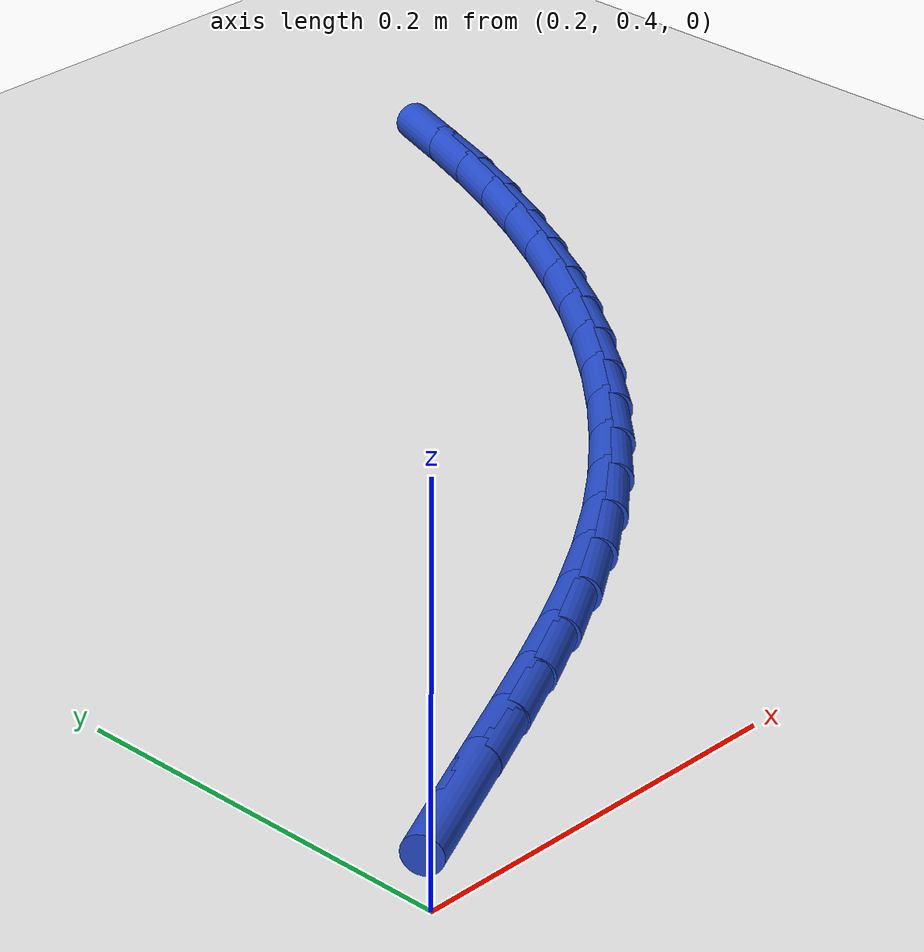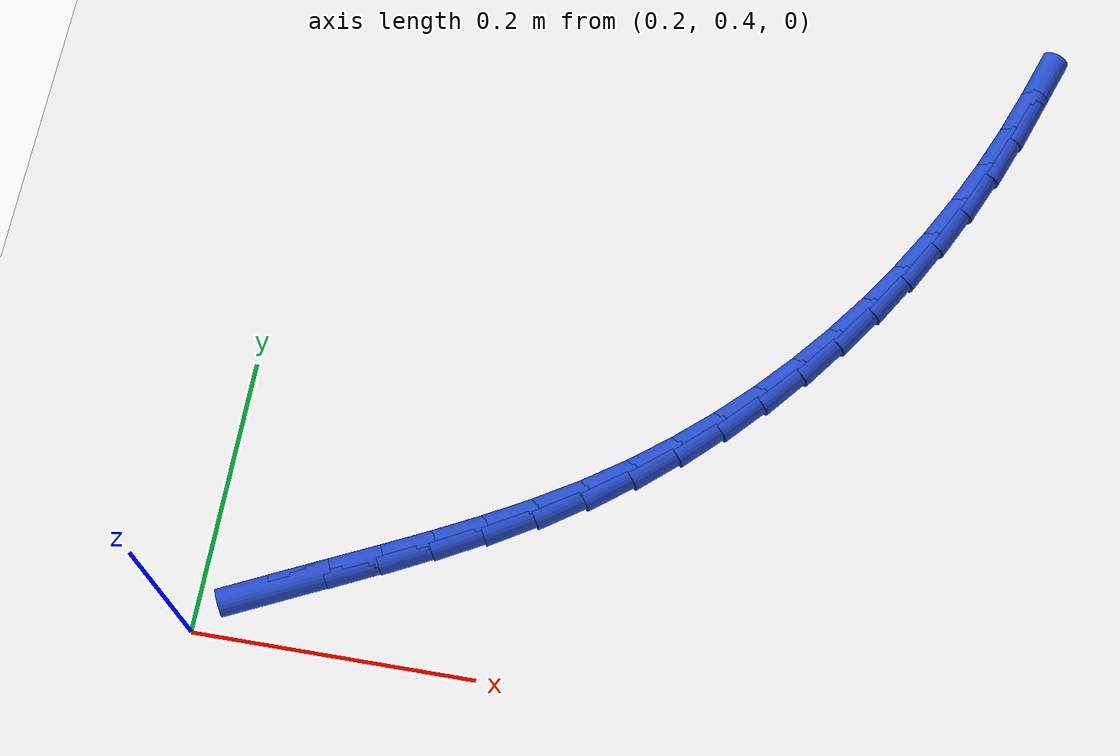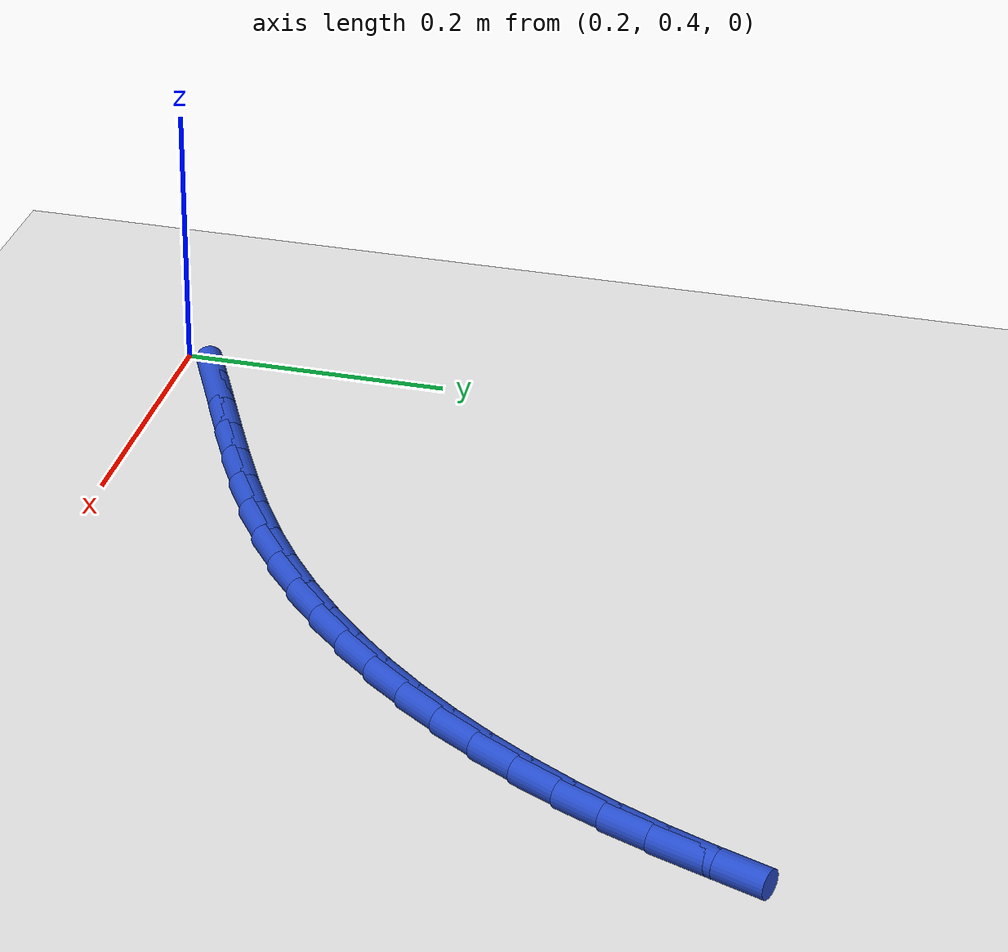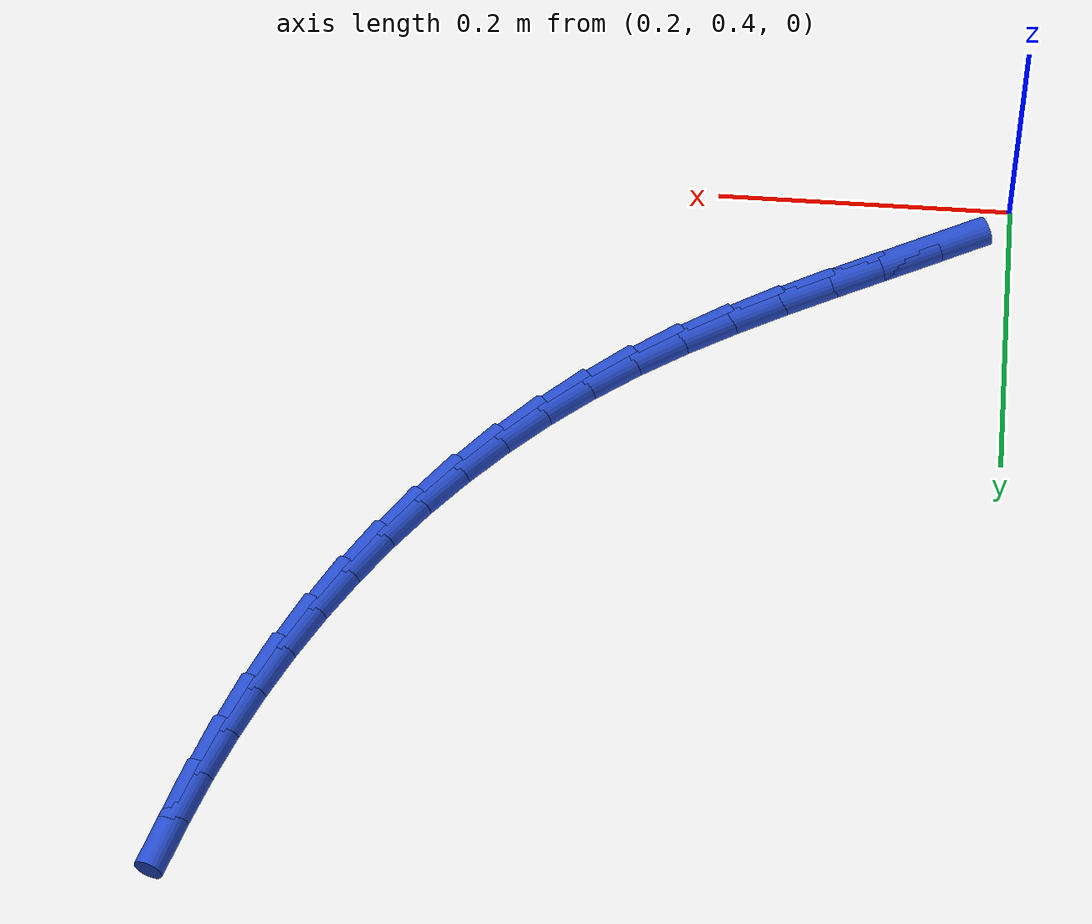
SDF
<sdf version="1.6">
 <world name="default">
  <model name="ground_plane">
   <static>1</static>
   <link name="link">
    <collision name="collision">
     <geometry><plane><normal>0 0 1</normal><size>100 100</size></plane></geometry>
     <surface><friction><ode><mu>100</mu><mu2>50</mu2></ode></friction></surface>
    </collision>
    <visual name="visual">
     <cast_shadows>0</cast_shadows>
     <geometry><plane><normal>0 0 1</normal><size>100 100</size></plane></geometry>
     <material>
      <script><uri>file://media/materials/scripts/gazebo.material</uri><name>Gazebo/WhiteGlow</name></script>
     </material>
    </visual>
   </link>
  </model>
  <model name="line">
   <link name="link_16">
    <pose>0.2521564494706003 0.43818609768198263 0.01 0 1.57 0.44652503722079323</pose>
    <collision name="collision">
     <geometry><cylinder><radius>0.01</radius><length>0.08</length></cylinder></geometry>
    </collision>
    <visual name="visual">
     <material>
      <script><name>Gazebo/Blue</name><uri>file://media/materials/scripts/gazebo.material</uri></script>
     </material>
     <geometry><cylinder><radius>0.01</radius><length>0.08</length></cylinder></geometry>
    </visual>
   </link>
   <link name="link_17">
    <pose>0.2856683229953873 0.45423079225791196 0.01 0 1.57 0.4436700247904026</pose>
    <collision name="collision">
     <geometry><cylinder><radius>0.01</radius><length>0.08</length></cylinder></geometry>
    </collision>
    <visual name="visual">
     <material>
      <script><name>Gazebo/Blue</name><uri>file://media/materials/scripts/gazebo.material</uri></script>
     </material>
     <geometry><cylinder><radius>0.01</radius><length>0.08</length></cylinder></geometry>
    </visual>
   </link>
   <link name="link_18">
    <pose>0.31950803749584206 0.470313852094932 0.01 0 1.57 0.45228178848544115</pose>
    <collision name="collision">
     <geometry><cylinder><radius>0.01</radius><length>0.08</length></cylinder></geometry>
    </collision>
    <visual name="visual">
     <material>
      <script><name>Gazebo/Blue</name><uri>file://media/materials/scripts/gazebo.material</uri></script>
     </material>
     <geometry><cylinder><radius>0.01</radius><length>0.08</length></cylinder></geometry>
    </visual>
   </link>
   <link name="link_19">
    <pose>0.3533076465643073 0.4867361493356194 0.01 0 1.57 0.472392711204192</pose>
    <collision name="collision">
     <geometry><cylinder><radius>0.01</radius><length>0.08</length></cylinder></geometry>
    </collision>
    <visual name="visual">
     <material>
      <script><name>Gazebo/Blue</name><uri>file://media/materials/scripts/gazebo.material</uri></script>
     </material>
     <geometry><cylinder><radius>0.01</radius><length>0.08</length></cylinder></geometry>
    </visual>
   </link>
   <link name="link_20">
    <pose>0.3866992037931257 0.5037985561225509 0.01 0 1.57 0.5043680207974137</pose>
    <collision name="collision">
     <geometry><cylinder><radius>0.01</radius><length>0.08</length></cylinder></geometry>
    </collision>
    <visual name="visual">
     <material>
      <script><name>Gazebo/Blue</name><uri>file://media/materials/scripts/gazebo.material</uri></script>
     </material>
     <geometry><cylinder><radius>0.01</radius><length>0.08</length></cylinder></geometry>
    </visual>
   </link>
   <link name="link_21">
    <pose>0.4193147627746399 0.521801944598303 0.01 0 1.57 0.5488405969562765</pose>
    <collision name="collision">
     <geometry><cylinder><radius>0.01</radius><length>0.08</length></cylinder></geometry>
    </collision>
    <visual name="visual">
     <material>
      <script><name>Gazebo/Blue</name><uri>file://media/materials/scripts/gazebo.material</uri></script>
     </material>
     <geometry><cylinder><radius>0.01</radius><length>0.08</length></cylinder></geometry>
    </visual>
   </link>
   <link name="link_22">
    <pose>0.450786377109044 0.5410471868973654 0.01 0 1.57 0.6041317047802777</pose>
    <collision name="collision">
     <geometry><cylinder><radius>0.01</radius><length>0.08</length></cylinder></geometry>
    </collision>
    <visual name="visual">
     <material>
      <script><name>Gazebo/Blue</name><uri>file://media/materials/scripts/gazebo.material</uri></script>
     </material>
     <geometry><cylinder><radius>0.01</radius><length>0.08</length></cylinder></geometry>
    </visual>
   </link>
   <link name="link_23">
    <pose>0.48080956747367437 0.5617697800733801 0.01 0 1.57 0.6609411289230461</pose>
    <collision name="collision">
     <geometry><cylinder><radius>0.01</radius><length>0.08</length></cylinder></geometry>
    </collision>
    <visual name="visual">
     <material>
      <script><name>Gazebo/Blue</name><uri>file://media/materials/scripts/gazebo.material</uri></script>
     </material>
     <geometry><cylinder><radius>0.01</radius><length>0.08</length></cylinder></geometry>
    </visual>
   </link>
   <link name="link_24">
    <pose>0.5093299376455233 0.58394761985983 0.01 0 1.57 0.7167491741804481</pose>
    <collision name="collision">
     <geometry><cylinder><radius>0.01</radius><length>0.08</length></cylinder></geometry>
    </collision>
    <visual name="visual">
     <material>
      <script><name>Gazebo/Blue</name><uri>file://media/materials/scripts/gazebo.material</uri></script>
     </material>
     <geometry><cylinder><radius>0.01</radius><length>0.08</length></cylinder></geometry>
    </visual>
   </link>
   <link name="link_25">
    <pose>0.5363546799417076 0.6074951619206179 0.01 0 1.57 0.7714099032592656</pose>
    <collision name="collision">
     <geometry><cylinder><radius>0.01</radius><length>0.08</length></cylinder></geometry>
    </collision>
    <visual name="visual">
     <material>
      <script><name>Gazebo/Blue</name><uri>file://media/materials/scripts/gazebo.material</uri></script>
     </material>
     <geometry><cylinder><radius>0.01</radius><length>0.08</length></cylinder></geometry>
    </visual>
   </link>
   <link name="link_26">
    <pose>0.5618909866793449 0.6323268619196474 0.01 0 1.57 0.824815396915963</pose>
    <collision name="collision">
     <geometry><cylinder><radius>0.01</radius><length>0.08</length></cylinder></geometry>
    </collision>
    <visual name="visual">
     <material>
      <script><name>Gazebo/Blue</name><uri>file://media/materials/scripts/gazebo.material</uri></script>
     </material>
     <geometry><cylinder><radius>0.01</radius><length>0.08</length></cylinder></geometry>
    </visual>
   </link>
   <link name="link_27">
    <pose>0.5859460501755525 0.6583571755208212 0.01 0 1.57 0.8768951348888644</pose>
    <collision name="collision">
     <geometry><cylinder><radius>0.01</radius><length>0.08</length></cylinder></geometry>
    </collision>
    <visual name="visual">
     <material>
      <script><name>Gazebo/Blue</name><uri>file://media/materials/scripts/gazebo.material</uri></script>
     </material>
     <geometry><cylinder><radius>0.01</radius><length>0.08</length></cylinder></geometry>
    </visual>
   </link>
   <link name="link_28">
    <pose>0.6085270627474474 0.6855005583880425 0.01 0 1.57 0.9276139635343557</pose>
    <collision name="collision">
     <geometry><cylinder><radius>0.01</radius><length>0.08</length></cylinder></geometry>
    </collision>
    <visual name="visual">
     <material>
      <script><name>Gazebo/Blue</name><uri>file://media/materials/scripts/gazebo.material</uri></script>
     </material>
     <geometry><cylinder><radius>0.01</radius><length>0.08</length></cylinder></geometry>
    </visual>
   </link>
   <link name="link_29">
    <pose>0.629641216712147 0.7136714661852142 0.01 0 1.57 0.9769690754577881</pose>
    <collision name="collision">
     <geometry><cylinder><radius>0.01</radius><length>0.08</length></cylinder></geometry>
    </collision>
    <visual name="visual">
     <material>
      <script><name>Gazebo/Blue</name><uri>file://media/materials/scripts/gazebo.material</uri></script>
     </material>
     <geometry><cylinder><radius>0.01</radius><length>0.08</length></cylinder></geometry>
    </visual>
   </link>
   <link name="link_30">
    <pose>0.6492957043867685 0.7427843545762395 0.01 0 1.57 1.024986415540435</pose>
    <collision name="collision">
     <geometry><cylinder><radius>0.01</radius><length>0.08</length></cylinder></geometry>
    </collision>
    <visual name="visual">
     <material>
      <script><name>Gazebo/Blue</name><uri>file://media/materials/scripts/gazebo.material</uri></script>
     </material>
     <geometry><cylinder><radius>0.01</radius><length>0.08</length></cylinder></geometry>
    </visual>
   </link>
   <link name="link_31">
    <pose>0.6674977180884293 0.7727536792250214 0.01 0 1.57 1.0717168755039255</pose>
    <collision name="collision">
     <geometry><cylinder><radius>0.01</radius><length>0.08</length></cylinder></geometry>
    </collision>
    <visual name="visual">
     <material>
      <script><name>Gazebo/Blue</name><uri>file://media/materials/scripts/gazebo.material</uri></script>
     </material>
     <geometry><cylinder><radius>0.01</radius><length>0.08</length></cylinder></geometry>
    </visual>
   </link>
   <link name="link_32">
    <pose>0.6842544501342464 0.8034938957954632 0.01 0 1.57 1.1172325649504393</pose>
    <collision name="collision">
     <geometry><cylinder><radius>0.01</radius><length>0.08</length></cylinder></geometry>
    </collision>
    <visual name="visual">
     <material>
      <script><name>Gazebo/Blue</name><uri>file://media/materials/scripts/gazebo.material</uri></script>
     </material>
     <geometry><cylinder><radius>0.01</radius><length>0.08</length></cylinder></geometry>
    </visual>
   </link>
   <link name="link_33">
    <pose>0.6995730928413372 0.8349194599514675 0.01 0 1.57 1.1616233670008453</pose>
    <collision name="collision">
     <geometry><cylinder><radius>0.01</radius><length>0.08</length></cylinder></geometry>
    </collision>
    <visual name="visual">
     <material>
      <script><name>Gazebo/Blue</name><uri>file://media/materials/scripts/gazebo.material</uri></script>
     </material>
     <geometry><cylinder><radius>0.01</radius><length>0.08</length></cylinder></geometry>
    </visual>
   </link>
   <link name="link_34">
    <pose>0.7134608385268189 0.866944827356938 0.01 0 1.57 1.2034568578909017</pose>
    <collision name="collision">
     <geometry><cylinder><radius>0.01</radius><length>0.08</length></cylinder></geometry>
    </collision>
    <visual name="visual">
     <material>
      <script><name>Gazebo/Blue</name><uri>file://media/materials/scripts/gazebo.material</uri></script>
     </material>
     <geometry><cylinder><radius>0.01</radius><length>0.08</length></cylinder></geometry>
    </visual>
   </link>
   <link name="link_35">
    <pose>0.7259781852926838 0.8994738469741528 0.01 0 1.57 1.233446599249353</pose>
    <collision name="collision">
     <geometry><cylinder><radius>0.01</radius><length>0.08</length></cylinder></geometry>
    </collision>
    <visual name="visual">
     <material>
      <script><name>Gazebo/Blue</name><uri>file://media/materials/scripts/gazebo.material</uri></script>
     </material>
     <geometry><cylinder><radius>0.01</radius><length>0.08</length></cylinder></geometry>
    </visual>
   </link>
  </model>
 </world>
</sdf>
